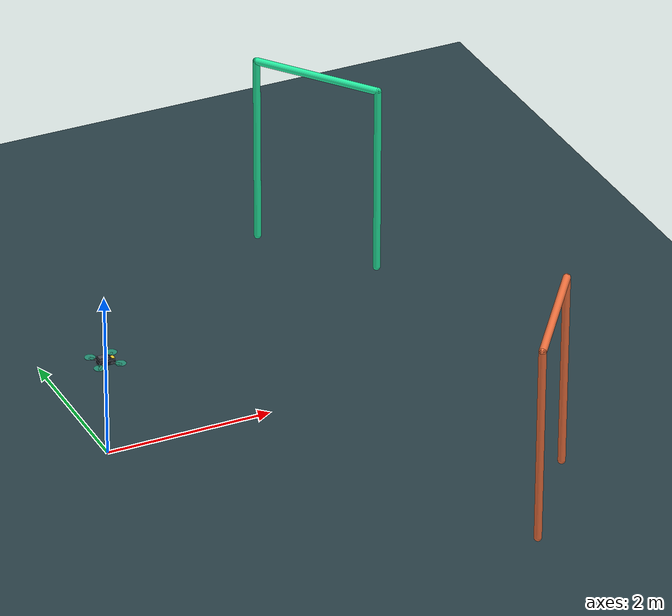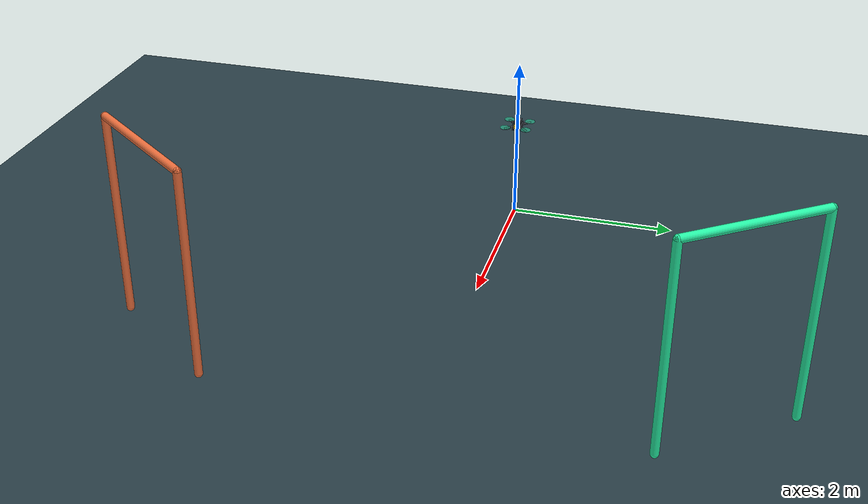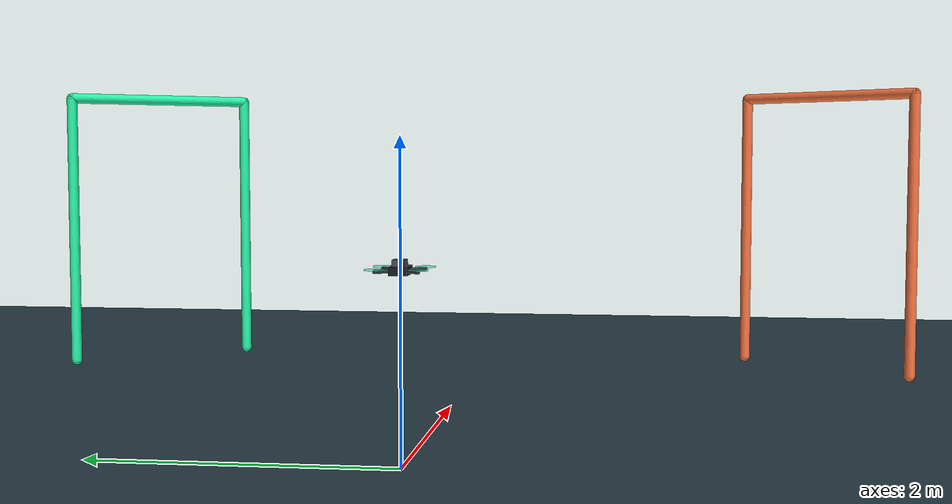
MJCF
<mujoco model="FPV quad experimental">
  <compiler angle="radian"/>
  <option timestep="0.005" integrator="RK4" gravity="0 0 -9.81"/>
  <visual>
    <global offwidth="960" offheight="540"/>
    <headlight ambient="0.45 0.45 0.45" diffuse="0.6 0.6 0.6"/>
  </visual>
  <asset>
    <texture type="skybox" builtin="gradient" rgb1="0.34 0.57 0.78" rgb2="0.03 0.07 0.11" width="512" height="3072"/>
    <texture name="checker" type="2d" builtin="checker" rgb1="0.13 0.20 0.23" rgb2="0.19 0.29 0.32" width="512" height="512"/>
    <material name="ground" texture="checker" texrepeat="24 24" texuniform="true"/>
  </asset>
  <worldbody>
    <light pos="0 0 8" dir="0 0 -1" directional="true"/>
    <geom name="floor" type="plane" size="20 20 0.1" material="ground"/>
    <!-- Fixed world reference for pursuit videos; never used as a controller sensor. -->
    <camera name="overview" pos="7 -8 5" xyaxes="1 0 0 0 0.529999 0.847998" fovy="60"/>

    <body name="gate_left" pos="4 3 0" euler="0 0 0.6435011088">
      <geom name="left_post_l" type="capsule" fromto="0 -0.8 0.05 0 -0.8 2.4" size="0.045" rgba="0.15 0.95 0.65 1"/>
      <geom name="left_post_r" type="capsule" fromto="0 0.8 0.05 0 0.8 2.4" size="0.045" rgba="0.15 0.95 0.65 1"/>
      <geom name="left_crossbar" type="capsule" fromto="0 -0.8 2.4 0 0.8 2.4" size="0.045" rgba="0.15 0.95 0.65 1"/>
    </body>
    <body name="gate_right" pos="4 -3 0" euler="0 0 -0.6435011088">
      <geom name="right_post_l" type="capsule" fromto="0 -0.8 0.05 0 -0.8 2.4" size="0.045" rgba="0.95 0.45 0.25 1"/>
      <geom name="right_post_r" type="capsule" fromto="0 0.8 0.05 0 0.8 2.4" size="0.045" rgba="0.95 0.45 0.25 1"/>
      <geom name="right_crossbar" type="capsule" fromto="0 -0.8 2.4 0 0.8 2.4" size="0.045" rgba="0.95 0.45 0.25 1"/>
    </body>

    <!-- A visual-only moving pursuit target, hidden during gate experiments. -->
    <body name="cow" mocap="true" pos="2.2 0 0">
      <geom name="cow_body" type="box" pos="0 0 0.92" size="0.52 0.28 0.31" contype="0" conaffinity="0" rgba="0.88 0.88 0.82 0"/>
      <geom name="cow_head" type="ellipsoid" pos="0.60 0 1.07" size="0.26 0.22 0.23" contype="0" conaffinity="0" rgba="0.87 0.84 0.77 0"/>
      <geom name="cow_nose" type="ellipsoid" pos="0.81 0 0.99" size="0.13 0.15 0.10" contype="0" conaffinity="0" rgba="0.80 0.53 0.55 0"/>
      <geom name="cow_spot_l" type="ellipsoid" pos="-0.08 0.275 1.00" size="0.22 0.015 0.17" contype="0" conaffinity="0" rgba="0.12 0.14 0.16 0"/>
      <geom name="cow_spot_r" type="ellipsoid" pos="0.18 -0.275 0.99" size="0.18 0.015 0.13" contype="0" conaffinity="0" rgba="0.12 0.14 0.16 0"/>
      <geom name="cow_leg_fl" type="capsule" fromto="0.35 0.19 0.65 0.35 0.19 0.08" size="0.07" contype="0" conaffinity="0" rgba="0.78 0.78 0.73 0"/>
      <geom name="cow_leg_fr" type="capsule" fromto="0.35 -0.19 0.65 0.35 -0.19 0.08" size="0.07" contype="0" conaffinity="0" rgba="0.78 0.78 0.73 0"/>
      <geom name="cow_leg_rl" type="capsule" fromto="-0.35 0.19 0.65 -0.35 0.19 0.08" size="0.07" contype="0" conaffinity="0" rgba="0.78 0.78 0.73 0"/>
      <geom name="cow_leg_rr" type="capsule" fromto="-0.35 -0.19 0.65 -0.35 -0.19 0.08" size="0.07" contype="0" conaffinity="0" rgba="0.78 0.78 0.73 0"/>
      <geom name="cow_tag" type="box" pos="-0.54 0 1.00" size="0.018 0.28 0.22" contype="0" conaffinity="0" rgba="0.96 0.10 0.90 0"/>
    </body>

    <body name="quad" pos="0 0 1.2">
      <freejoint name="quad_free"/>
      <inertial pos="0 0 0" mass="0.75" diaginertia="0.006 0.006 0.011"/>
      <geom name="frame" type="box" size="0.095 0.055 0.027" mass="0" rgba="0.08 0.10 0.13 1"/>
      <geom name="battery" type="box" pos="-0.025 0 0.045" size="0.06 0.037 0.022" mass="0" rgba="0.28 0.30 0.33 1"/>
      <geom name="nose" type="box" pos="0.085 0 0.015" size="0.018 0.028 0.020" mass="0" rgba="0.96 0.82 0.18 1"/>
      <geom name="arm_fl" type="capsule" fromto="0 0 0 0.13 0.13 0" size="0.012" mass="0" rgba="0.22 0.24 0.27 1"/>
      <geom name="arm_fr" type="capsule" fromto="0 0 0 0.13 -0.13 0" size="0.012" mass="0" rgba="0.22 0.24 0.27 1"/>
      <geom name="arm_rr" type="capsule" fromto="0 0 0 -0.13 -0.13 0" size="0.012" mass="0" rgba="0.22 0.24 0.27 1"/>
      <geom name="arm_rl" type="capsule" fromto="0 0 0 -0.13 0.13 0" size="0.012" mass="0" rgba="0.22 0.24 0.27 1"/>
      <geom name="prop_fl" type="cylinder" pos="0.13 0.13 0.012" size="0.062 0.003" mass="0" contype="0" conaffinity="0" rgba="0.15 0.88 0.65 0.5"/>
      <geom name="prop_fr" type="cylinder" pos="0.13 -0.13 0.012" size="0.062 0.003" mass="0" contype="0" conaffinity="0" rgba="0.15 0.88 0.65 0.5"/>
      <geom name="prop_rr" type="cylinder" pos="-0.13 -0.13 0.012" size="0.062 0.003" mass="0" contype="0" conaffinity="0" rgba="0.15 0.88 0.65 0.5"/>
      <geom name="prop_rl" type="cylinder" pos="-0.13 0.13 0.012" size="0.062 0.003" mass="0" contype="0" conaffinity="0" rgba="0.15 0.88 0.65 0.5"/>
      <site name="motor_fl" pos="0.13 0.13 0"/>
      <site name="motor_fr" pos="0.13 -0.13 0"/>
      <site name="motor_rr" pos="-0.13 -0.13 0"/>
      <site name="motor_rl" pos="-0.13 0.13 0"/>
      <camera name="fpv" pos="0.102 0 0.045" xyaxes="0 -1 0 0 0 1" fovy="95"/>
      <camera name="chase" pos="-1.5 0 0.65" xyaxes="0 -1 0 0 0 1" fovy="60"/>
    </body>
  </worldbody>
  <actuator>
    <motor name="fl" site="motor_fl" gear="0 0 1 0 0 0.012" ctrlrange="0 8"/>
    <motor name="fr" site="motor_fr" gear="0 0 1 0 0 -0.012" ctrlrange="0 8"/>
    <motor name="rr" site="motor_rr" gear="0 0 1 0 0 0.012" ctrlrange="0 8"/>
    <motor name="rl" site="motor_rl" gear="0 0 1 0 0 -0.012" ctrlrange="0 8"/>
  </actuator>
</mujoco>
